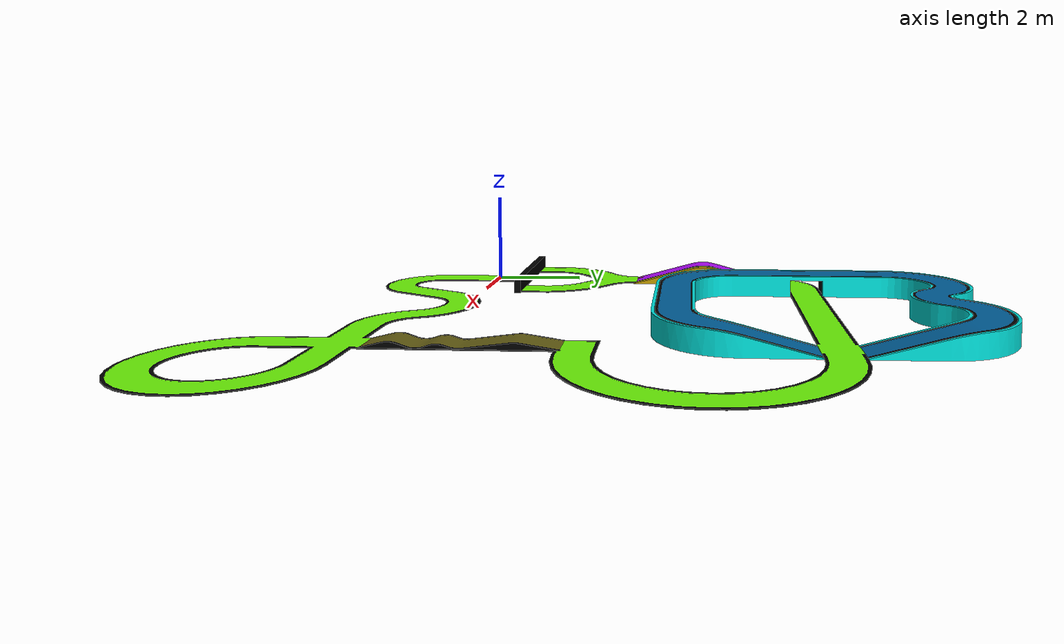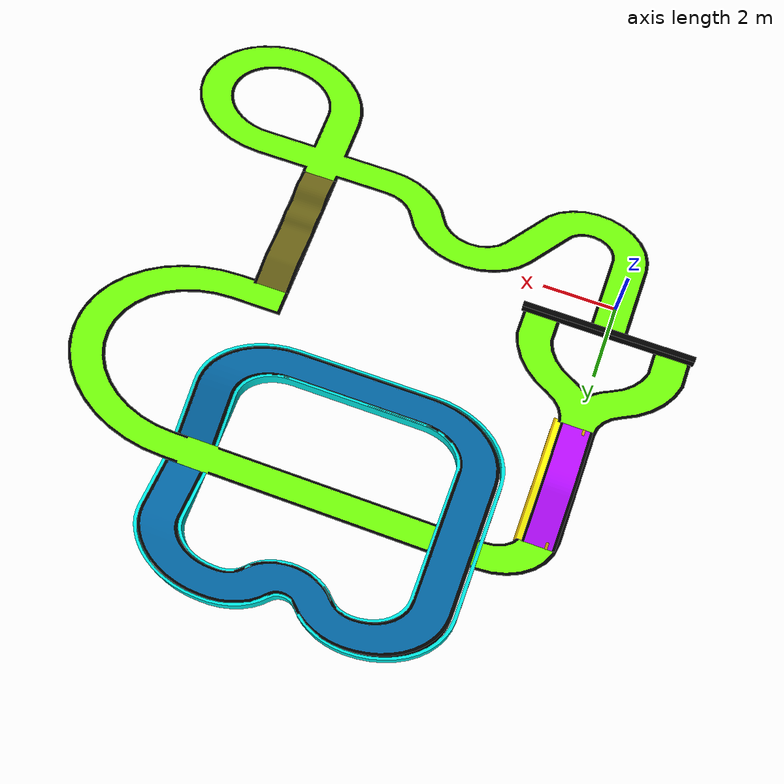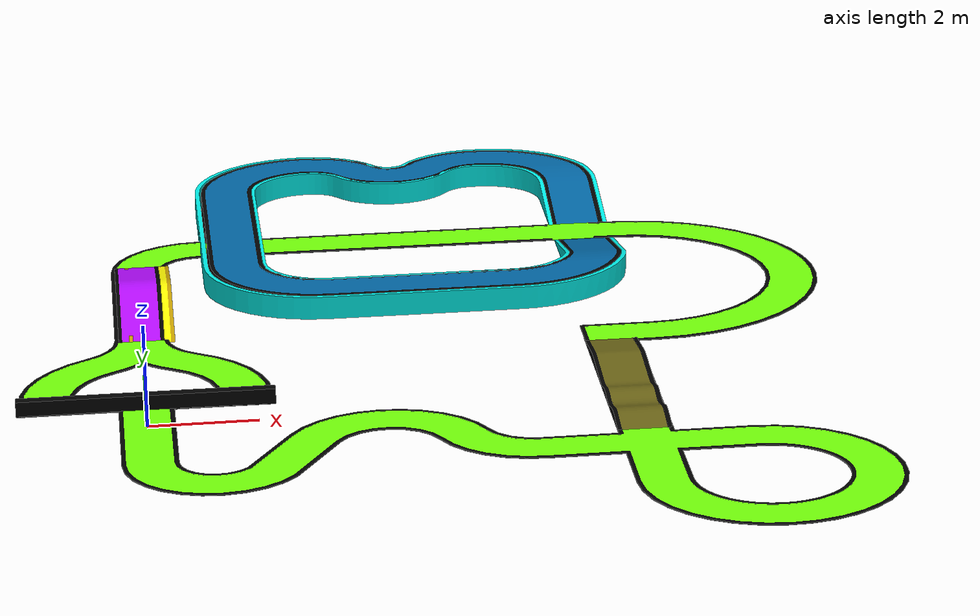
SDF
<?xml version="1.0" ?>
<sdf version="1.6">
  <model name='Grand_Finale_Track'>
     <pose>0 0 0 0 0 0</pose>
    <self_collide>false</self_collide>
    <static>true</static>
    <link name='Raceway2/Base'>
      <visual name='Raceway2/TrackVisual'>
        <pose>0 0 -.045 0 0 0</pose>
        <geometry>
          <mesh>
            <scale>0.42 0.31 0.31</scale>
            <uri>model://Grand_Finale_Track/meshes/Track_2.dae</uri>
          </mesh>
        </geometry>
      </visual>
      <visual name='Raceway2/BridgeWallVisual'>
        <pose>0 0 -0.05 0 0 0</pose>
        <geometry>
          <mesh>
            <scale>0.43 0.31 0.31</scale>
            <uri>model://Grand_Finale_Track/meshes/BridgeWallCollision_2.dae</uri>
          </mesh>
        </geometry>
      </visual>
      <visual name='Raceway2/BridgeVisual'>
        <pose>-0.16 -0.17 -0.05 0 0 0</pose>
        <geometry>
          <mesh>
            <scale>0.441 0.317 0.31</scale>
            <uri>model://Grand_Finale_Track/meshes/bridge_exterior.dae</uri>
          </mesh>
        </geometry>
      </visual>
      <visual name='Raceway2/BridgeVisual2'>
        <pose>0.12 0.1 -0.05 0 0 0</pose>
        <geometry>
          <mesh>
            <scale>0.42 0.305 0.31</scale>
            <uri>model://Grand_Finale_Track/meshes/bridge_interior.dae</uri>
          </mesh>
        </geometry>
      </visual>
      <collision name='Raceway2/BridgeWallCollision'>
        <pose>0 0 -0.05 0 0 0</pose>
        <geometry>
          <mesh>
            <scale>0.43 0.31 0.31</scale>
            <uri>model://Grand_Finale_Track/meshes/BridgeWallCollision_2.dae</uri>
          </mesh>
        </geometry>
      </collision>
      <visual name='Raceway_1/RumbleVisual'>
        <pose>8.81 0.75 -0.05 0 0 0</pose>
        <geometry>
          <mesh>
            <scale>0.415 0.45 0.3</scale>
            <uri>model://Grand_Finale_Track/meshes/rumble_new.dae</uri>
          </mesh>
        </geometry>
      </visual>
      <collision name='Raceway_1/RumbleCollision'>
        <pose>8.81 0.75 -0.05 0 0 0</pose>
        <geometry>
          <mesh>
            <scale>0.415 0.45 0.3</scale>
            <uri>model://Grand_Finale_Track/meshes/rumble_new.dae</uri>
          </mesh>
        </geometry>
      </collision>

      <collision name='Raceway_1/BridgeCollision2'>
        <pose>0 5.1 -0.045 0 0 0</pose>
        <geometry>
          <mesh>
            <scale>0.36 0.4 0.25</scale>
            <uri>model://Grand_Finale_Track/meshes/Bridge_new.dae</uri>
          </mesh>
        </geometry>
      </collision>
      <visual name='Raceway_1/BridgeVisual2'>
        <pose>0 5.1 -0.045 0 0 0</pose>
        <geometry>
          <mesh>
            <scale>0.36 0.4 0.25</scale>
            <uri>model://Grand_Finale_Track/meshes/Bridge_new.dae</uri>
          </mesh>
        </geometry>
      </visual>
      <visual name='Raceway_1/BridgeExtVisual3'>
        <pose>0.2 5.1 -0.045 0 0 0</pose>
        <geometry>
          <mesh>
            <scale>0.36 0.4 0.24</scale>
            <uri>model://Grand_Finale_Track/meshes/bridge_extension.dae</uri>
          </mesh>
        </geometry>
      </visual>
    </link>
  </model>
</sdf>
